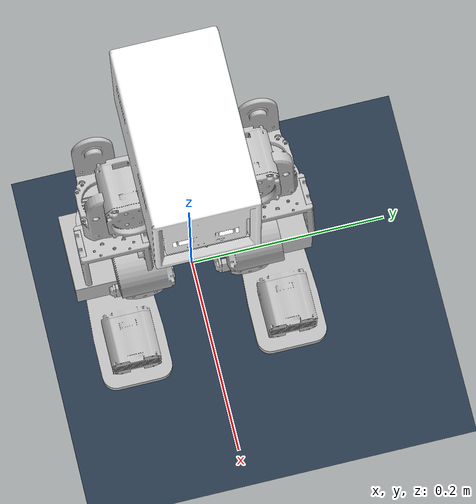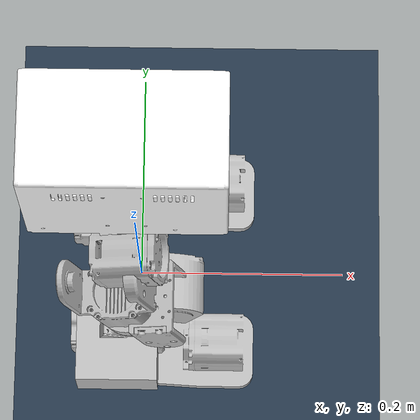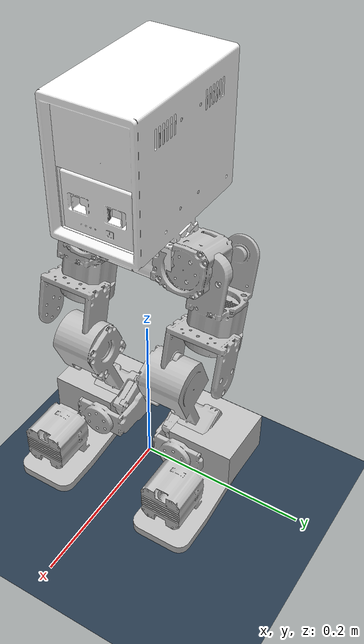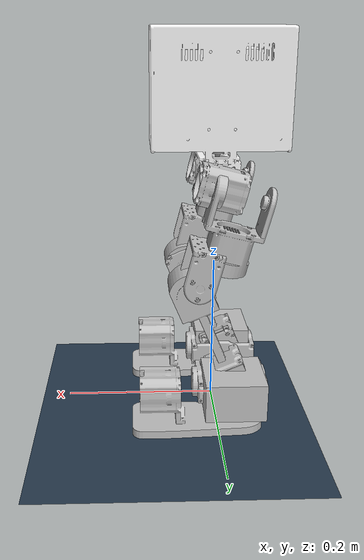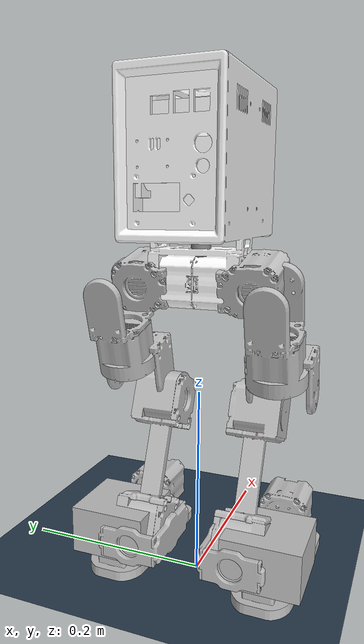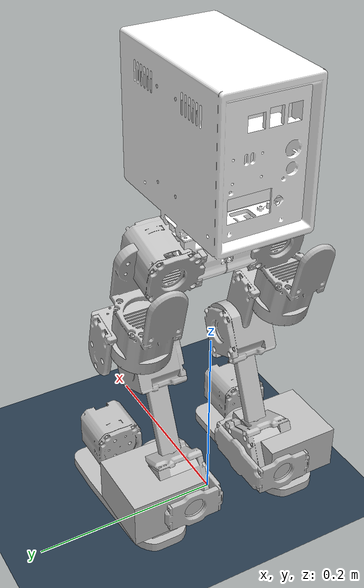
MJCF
<mujoco model="clpai_12dof_0905">
  <compiler angle="radian" meshdir="../meshes/" eulerseq="zyx"/>
    <option timestep='0.001' iterations='50' solver='PGS' gravity='0 0 -9.81'>
    <flag sensornoise="enable" frictionloss="enable"/>
    </option>
    <size njmax="500" nconmax="100" />

    <visual>
        <quality shadowsize='4096'/>
        <map znear='0.05'/>
    </visual>

    <default>
        <joint limited='true'/>
        <motor ctrllimited='true'/>
        <geom  condim='4' contype="1" conaffinity="15" solref='0.001 2' friction='0.9 0.2 0.2'/>
        <equality solref='0.001 2'/>
        <default class='visualgeom'>
            <geom material='visualgeom' condim='1' contype='0' conaffinity='0'/>
        </default>
        <default class='visualgeom2'>
            <geom material='visualgeom2' condim='1' contype='0' conaffinity='0'/>
        </default>
        <default class='obstacle'>
            <geom material='obstacle' condim='3' contype='1' conaffinity='15'/>
        </default>
    </default>
    <asset>
      <texture type="skybox" builtin="gradient" rgb1="0.3 0.5 0.7" rgb2="0 0 0" width="512" height="512"/>
      <texture name="texplane" type="2d" builtin="checker" rgb1=".2 .3 .4" rgb2=".1 0.15 0.2"
          width="512" height="512" mark="cross" markrgb=".8 .8 .8"/>
      <texture name="texplane2" type="2d" builtin="checker" rgb1="1 0.3137 0.1843" rgb2="0.0 0.30196 0.38039"
          width="512" height="512" mark="cross" markrgb=".8 .8 .8"/>

      <material name="matplane" reflectance="0." texture="texplane" texrepeat="1 1" texuniform="true"/>
      <material name="matplane2" reflectance="0.1" texture="texplane2" texrepeat="1 1" texuniform="true"/>

      <material name='obstacle'  rgba='0.9 0.6 0.2 1'/>
      <material name='visualgeom'  rgba='0.5 0.9 0.2 1'/>
      <material name='visualgeom2'  rgba='0.5 0.9 0.2 1'/>

     <mesh name="baselink_1" file="baselink_1.STL"/>
      <mesh name="r_hip_pitch_link" file="r_hip_pitch_link.STL"/>
      <mesh name="r_hip_roll_link" file="r_hip_roll_link.STL"/>
      <mesh name="r_thigh_link" file="r_thigh_link.STL"/>
      <mesh name="r_calf_link" file="r_calf_link.STL"/>
      <mesh name="r_ankle_pitch_link" file="r_ankle_pitch_link.STL"/>
      <mesh name="r_ankle_roll_link" file="r_ankle_roll_link.STL"/>
      <mesh name="l_hip_pitch_link" file="l_hip_pitch_link.STL"/>
      <mesh name="l_hip_roll_link" file="l_hip_roll_link.STL"/>
      <mesh name="l_thigh_link" file="l_thigh_link.STL"/>
      <mesh name="l_calf_link" file="l_calf_link.STL"/>
      <mesh name="l_ankle_pitch_link" file="l_ankle_pitch_link.STL"/>
      <mesh name="l_ankle_roll_link" file="l_ankle_roll_link.STL"/>

      <hfield name='hf0' nrow='200' ncol='200' size="10 5 0.2 .1"/>
      </asset>
  <worldbody>
    <light directional="true" diffuse=".4 .4 .4" specular="0.1 0.1 0.1" pos="0 0 5.0" dir="0 0 -1" castshadow="false"/>
    <light directional="true" diffuse=".6 .6 .6" specular="0.2 0.2 0.2" pos="0 0 4" dir="0 0 -1"/>
    <geom name="ground" type="plane" size="0 0 1" pos="0.001 0 0" quat="1 0 0 0" material="matplane" condim="1" conaffinity='15'/>

    <body name="base_link" pos="0.0 0.0 0.347">
      <inertial pos="0.00242324 -5.699e-05 0.0403008" quat="0.695312 0.00968645 0.00943283 0.718581" mass="2.1609" diaginertia="0.00978249 0.00901239 0.00416199"/>
      <joint type='slide' axis='1 0 0' limited='false' />
      <joint type='slide' axis='0 1 0' limited='false' />
      <joint type='slide' axis='0 0 1' limited='false' />
      <joint type='ball' limited='false' />
      <site name='imu' size='0.01' pos='0.0 0 0.0'/>

      <geom type="mesh" contype="0" conaffinity="0" group="1" density="0" rgba="1 1 1 1" mesh="baselink_1"/>
      <geom size="0.05 0.05 0.05" pos="0 0 0.08" type="box" rgba="1 1 1 1"/>

      <body name="r_hip_pitch_link" pos="-5.1979e-05 -0.0233 -0.033" quat="0.992198 0 -0.124675 0">
        <inertial pos="0.00089428 -0.0552774 -0.00027276" quat="-0.0190163 0.705972 -0.0283274 0.707417" mass="0.369998" diaginertia="0.000108547 9.80557e-05 8.30673e-05"/>
        <joint name="r_hip_pitch_joint" pos="0 0 0" axis="0 1 0" range="-1.25 1.75"/>
        <geom type="mesh" contype="0" conaffinity="0" group="1" density="0" rgba="0.75294 0.75294 0.75294 1" mesh="r_hip_pitch_link"/>
        <geom size="0.0005 0.0005 0.0005" type="box" rgba="0.75294 0.75294 0.75294 1"/>
        <body name="r_hip_roll_link" pos="0.00025 -0.0568 0">
          <inertial pos="-0.00180153 0.00025956 -0.0608194" quat="0.705929 -0.0791259 -0.0825487 0.698992" mass="0.388516" diaginertia="0.000334209 0.00027814 0.000128441"/>
          <joint name="r_hip_roll_joint" pos="0 0 0" axis="1 0 0" range="-0.5 0.12"/>
          <geom type="mesh" contype="0" conaffinity="0" group="1" density="0" rgba="0.75294 0.75294 0.75294 1" mesh="r_hip_roll_link"/>
          <geom size="0.0005 0.0005 0.0005" type="box" rgba="0.75294 0.75294 0.75294 1"/>
          <body name="r_thigh_link" pos="-0.00025 0 -0.06925">
            <inertial pos="0 0.00116854 -0.047559" quat="0.73728 0.675588 0 0" mass="0.112709" diaginertia="0.00012496 9.46591e-05 5.79209e-05"/>
            <joint name="r_thigh_joint" pos="0 0 0" axis="0 0 1" range="-0.6 0.3"/>
            <geom type="mesh" contype="0" conaffinity="0" group="1" density="0" rgba="0.75294 0.75294 0.75294 1" mesh="r_thigh_link"/>
            <geom size="0.0005 0.0005 0.0005" type="box" rgba="0.75294 0.75294 0.75294 1"/>
            <body name="r_calf_link" pos="0 -0.0027 -0.07025" quat="0.947651 0 0.319309 0">
              <inertial pos="-0.00026627 -0.00116537 -0.0697121" quat="0.999984 -0.00311529 0.000122098 0.00472349" mass="0.813742" diaginertia="0.00352123 0.00349959 0.000174551"/>
              <joint name="r_calf_joint" pos="0 0 0" axis="0 1 0" range="-0.65 1.65"/>
              <geom type="mesh" contype="0" conaffinity="0" group="1" density="0" rgba="0.75294 0.75294 0.75294 1" mesh="r_calf_link"/>
              <geom size="0.0005 0.0005 0.0005" type="box" rgba="0.75294 0.75294 0.75294 1"/>
              <body name="r_ankle_pitch_link" pos="0 0 -0.14" quat="0.980067 0 -0.198669 0">
                <inertial pos="0.00467932 0.00347699 0" quat="0.00221869 0.707103 -0.00221869 0.707103" mass="0.175924" diaginertia="0.00030766 0.000221794 0.000119806"/>
                <joint name="r_ankle_pitch_joint" pos="0 0 0" axis="0 1 0" range="-0.5 1.3"/>
                <geom type="mesh" contype="0" conaffinity="0" group="1" density="0" rgba="0.75294 0.75294 0.75294 1" mesh="r_ankle_pitch_link"/>
                <geom size="0.039 0.04 0.025" type="box" rgba="0.75294 0.75294 0.75294 1"/>
                <body name="r_ankle_roll_link" pos="0.07525 0.0027 0">
                  <inertial pos="-0.0238368 0.00019256 -0.0144649" quat="0.5599 0.43068 0.434161 0.559045" mass="0.518685" diaginertia="0.00113169 0.00103133 0.000283273"/>
                  <joint name="r_ankle_roll_joint" pos="0 0 0" axis="1 0 0" range="-0.15 0.15"/>
                  <geom type="mesh" contype="0" conaffinity="0" group="1" density="0" rgba="0.75294 0.75294 0.75294 1" mesh="r_ankle_roll_link"/>
                  <geom type="mesh" rgba="0.75294 0.75294 0.75294 1" mesh="r_ankle_roll_link"/>
                </body>
              </body>
            </body>
          </body>
        </body>
      </body>
      <body name="l_hip_pitch_link" pos="-5.1979e-05 0.0233 -0.033" quat="0.992198 0 -0.124675 0">
        <inertial pos="0.00086268 0.0544191 -0.00025859" quat="-0.0385995 0.705608 0.0295548 0.706932" mass="0.389686" diaginertia="0.000128344 0.000105107 0.000100719"/>
        <joint name="l_hip_pitch_joint" pos="0 0 0" axis="0 1 0" range="-1.25 1.75"/>
        <geom type="mesh" contype="0" conaffinity="0" group="1" density="0" rgba="0.75294 0.75294 0.75294 1" mesh="l_hip_pitch_link"/>
        <geom size="0.0005 0.0005 0.0005" type="box" rgba="0.75294 0.75294 0.75294 1"/>
        <body name="l_hip_roll_link" pos="0 0.0568 0">
          <inertial pos="-0.00207707 0.00026598 -0.0608194" quat="0.699248 -0.0752466 -0.0779987 0.706616" mass="0.388516" diaginertia="0.000333211 0.000277592 0.000128507"/>
          <joint name="l_hip_roll_joint" pos="0 0 0" axis="1 0 0" range="-0.12 0.5"/>
          <geom type="mesh" contype="0" conaffinity="0" group="1" density="0" rgba="0.75294 0.75294 0.75294 1" mesh="l_hip_roll_link"/>
          <geom size="0.0005 0.0005 0.0005" type="box" rgba="0.75294 0.75294 0.75294 1"/>
          <body name="l_thigh_link" pos="0 0 -0.06925">
            <inertial pos="0 -0.00115822 -0.047559" quat="0.67539 0.737461 0 0" mass="0.112709" diaginertia="0.00012497 9.46626e-05 5.79174e-05"/>
            <joint name="l_thigh_joint" pos="0 0 0" axis="0 0 1" range="-0.3 0.6"/>
            <geom type="mesh" contype="0" conaffinity="0" group="1" density="0" rgba="0.75294 0.75294 0.75294 1" mesh="l_thigh_link"/>
            <geom size="0.0005 0.0005 0.0005" type="box" rgba="0.75294 0.75294 0.75294 1"/>
            <body name="l_calf_link" pos="0 0 -0.07025" quat="0.947651 0 0.319309 0">
              <inertial pos="0.00026627 0.00386537 -0.0697121" quat="0.999984 0.00311529 -0.000122098 0.00472349" mass="0.813742" diaginertia="0.00352123 0.00349959 0.000174551"/>
              <joint name="l_calf_joint" pos="0 0 0" axis="0 1 0" range="-0.65 1.65"/>
              <geom type="mesh" contype="0" conaffinity="0" group="1" density="0" rgba="0.75294 0.75294 0.75294 1" mesh="l_calf_link"/>
              <geom size="0.0005 0.0005 0.0005" type="box" rgba="0.75294 0.75294 0.75294 1"/>
              <body name="l_ankle_pitch_link" pos="0 0 -0.14" quat="0.980067 0 -0.198669 0">
                <inertial pos="0.00467932 -0.00077699 0" quat="-0.00221869 0.707103 0.00221869 0.707103" mass="0.175924" diaginertia="0.00030766 0.000221794 0.000119806"/>
                <joint name="l_ankle_pitch_joint" pos="0 0 0" axis="0 1 0" range="-0.5 1.3"/>
                <geom type="mesh" contype="0" conaffinity="0" group="1" density="0" rgba="0.75294 0.75294 0.75294 1" mesh="l_ankle_pitch_link"/>
                <geom size="0.039 0.04 0.025" type="box" rgba="0.75294 0.75294 0.75294 1"/>
                <body name="l_ankle_roll_link" pos="0.07525 0 0">
                  <inertial pos="-0.0238368 0.00019256 -0.0144649" quat="0.5599 0.43068 0.434161 0.559045" mass="0.518685" diaginertia="0.00113169 0.00103133 0.000283273"/>
                  <joint name="l_ankle_roll_joint" pos="0 0 0" axis="1 0 0" range="-0.15 0.15"/>
                  <geom type="mesh" contype="0" conaffinity="0" group="1" density="0" rgba="0.75294 0.75294 0.75294 1" mesh="l_ankle_roll_link"/>
                  <geom type="mesh" rgba="0.75294 0.75294 0.75294 1" mesh="l_ankle_roll_link"/>
                </body>
              </body>
            </body>
          </body>
        </body>
      </body>
    </body>
  </worldbody>
  <actuator>
    <motor name="r_hip_pitch_joint" joint="r_hip_pitch_joint" gear="1" ctrllimited="true" ctrlrange="-200 200"/>
    <motor name="r_hip_roll_joint" joint="r_hip_roll_joint" gear="1" ctrllimited="true" ctrlrange="-200 200"/>
    <motor name="r_thigh_joint" joint="r_thigh_joint" gear="1" ctrllimited="true" ctrlrange="-200 200"/>
    <motor name="r_calf_joint" joint="r_calf_joint" gear="1" ctrllimited="true" ctrlrange="-200 200"/>
    <motor name="r_ankle_pitch_joint" joint="r_ankle_pitch_joint" gear="1" ctrllimited="true" ctrlrange="-200 200"/>
    <motor name="r_ankle_roll_joint" joint="r_ankle_roll_joint" gear="1" ctrllimited="true" ctrlrange="-200 200"/>
    <motor name="l_hip_pitch_joint" joint="l_hip_pitch_joint" gear="1" ctrllimited="true" ctrlrange="-200 200"/>
    <motor name="l_hip_roll_joint" joint="l_hip_roll_joint" gear="1" ctrllimited="true" ctrlrange="-200 200"/>
    <motor name="l_thigh_joint" joint="l_thigh_joint" gear="1" ctrllimited="true" ctrlrange="-200 200"/>
    <motor name="l_calf_joint" joint="l_calf_joint" gear="1" ctrllimited="true" ctrlrange="-200 200"/>
    <motor name="l_ankle_pitch_joint" joint="l_ankle_pitch_joint" gear="1" ctrllimited="true" ctrlrange="-200 200"/>
    <motor name="l_ankle_roll_joint" joint="l_ankle_roll_joint" gear="1" ctrllimited="true" ctrlrange="-200 200"/>
  </actuator>

  <sensor>
    <!-- Position sensors -->
    <actuatorpos name="r_hip_pitch_joint_p" actuator="r_hip_pitch_joint" user="13"/>
    <actuatorpos name="r_hip_roll_joint_p" actuator="r_hip_roll_joint" user="13"/>
    <actuatorpos name="r_thigh_joint_p" actuator="r_thigh_joint" user="13"/>
    <actuatorpos name="r_calf_joint_p" actuator="r_calf_joint" user="13"/>
    <actuatorpos name="r_ankle_pitch_joint_p" actuator="r_ankle_pitch_joint" user="13"/>
    <actuatorpos name="r_ankle_roll_joint_p" actuator="r_ankle_roll_joint" user="13"/>
    <actuatorpos name="l_hip_pitch_joint_p" actuator="l_hip_pitch_joint" user="13"/>
    <actuatorpos name="l_hip_roll_joint_p" actuator="l_hip_roll_joint" user="13"/>
    <actuatorpos name="l_thigh_joint_p" actuator="l_thigh_joint" user="13"/>
    <actuatorpos name="l_calf_joint_p" actuator="l_calf_joint" user="13"/>
    <actuatorpos name="l_ankle_pitch_joint_p" actuator="l_ankle_pitch_joint" user="13"/>
    <actuatorpos name="l_ankle_roll_joint_p" actuator="l_ankle_roll_joint" user="13"/>

    <!-- Velocity sensors -->
    <actuatorvel name="r_hip_pitch_joint_v" actuator="r_hip_pitch_joint" user="13" noise="1e-3"/>
    <actuatorvel name="r_hip_roll_joint_v" actuator="r_hip_roll_joint" user="13" noise="1e-3"/>
    <actuatorvel name="r_thigh_joint_v" actuator="r_thigh_joint" user="13" noise="1e-3"/>
    <actuatorvel name="r_calf_joint_v" actuator="r_calf_joint" user="13" noise="1e-3"/>
    <actuatorvel name="r_ankle_pitch_joint_v" actuator="r_ankle_pitch_joint" user="13" noise="1e-3"/>
    <actuatorvel name="r_ankle_roll_joint_v" actuator="r_ankle_roll_joint" user="13" noise="1e-3"/>
    <actuatorvel name="l_hip_pitch_joint_v" actuator="l_hip_pitch_joint" user="13" noise="1e-3"/>
    <actuatorvel name="l_hip_roll_joint_v" actuator="l_hip_roll_joint" user="13" noise="1e-3"/>
    <actuatorvel name="l_thigh_joint_v" actuator="l_thigh_joint" user="13" noise="1e-3"/>
    <actuatorvel name="l_calf_joint_v" actuator="l_calf_joint" user="13" noise="1e-3"/>
    <actuatorvel name="l_ankle_pitch_joint_v" actuator="l_ankle_pitch_joint" user="13" noise="1e-3"/>
    <actuatorvel name="l_ankle_roll_joint_v" actuator="l_ankle_roll_joint" user="13" noise="1e-3"/>

    <!-- Force sensors -->
    <actuatorfrc name="r_hip_pitch_joint_f" actuator="r_hip_pitch_joint" user="13" noise="1e-3"/>
    <actuatorfrc name="r_hip_roll_joint_f" actuator="r_hip_roll_joint" user="13" noise="1e-3"/>
    <actuatorfrc name="r_thigh_joint_f" actuator="r_thigh_joint" user="13" noise="1e-3"/>
    <actuatorfrc name="r_calf_joint_f" actuator="r_calf_joint" user="13" noise="1e-3"/>
    <actuatorfrc name="r_ankle_pitch_joint_f" actuator="r_ankle_pitch_joint" user="13" noise="1e-3"/>
    <actuatorfrc name="r_ankle_roll_joint_f" actuator="r_ankle_roll_joint" user="13" noise="1e-3"/>
    <actuatorfrc name="l_hip_pitch_joint_f" actuator="l_hip_pitch_joint" user="13" noise="1e-3"/>
    <actuatorfrc name="l_hip_roll_joint_f" actuator="l_hip_roll_joint" user="13" noise="1e-3"/>
    <actuatorfrc name="l_thigh_joint_f" actuator="l_thigh_joint" user="13" noise="1e-3"/>
    <actuatorfrc name="l_calf_joint_f" actuator="l_calf_joint" user="13" noise="1e-3"/>
    <actuatorfrc name="l_ankle_pitch_joint_f" actuator="l_ankle_pitch_joint" user="13" noise="1e-3"/>
    <actuatorfrc name="l_ankle_roll_joint_f" actuator="l_ankle_roll_joint" user="13" noise="1e-3"/>

    <framequat     name='orientation' objtype='site' noise='0.001' objname='imu'/>
    <framepos     name='position' objtype='site' noise='0.001' objname='imu'/>
    <gyro          name='angular-velocity'    site='imu' noise='0.005' cutoff='34.9'/>
    <velocimeter   name='linear-velocity'     site='imu' noise='0.001' cutoff='30'/>
    <accelerometer name='linear-acceleration' site='imu' noise='0.005' cutoff='157'/>
    <magnetometer  name='magnetometer'        site='imu'/>

  </sensor>
</mujoco>
